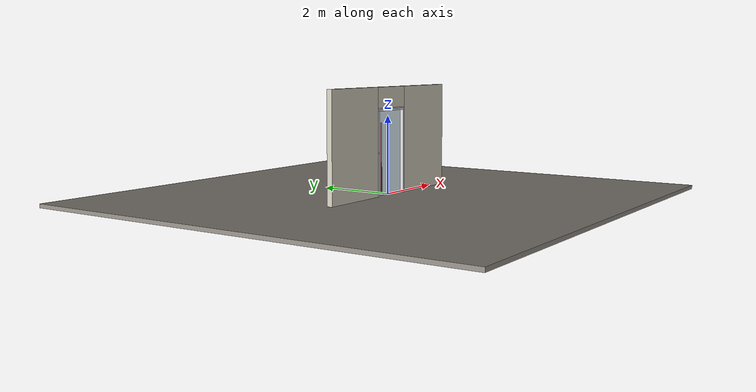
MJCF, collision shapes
<?xml version="1.0" ?>
<mujoco model="db0689_swing_single_minimal">
  <compiler angle="radian" meshdir="../../hardware" texturedir="../../textures" autolimits="true" inertiafromgeom="false"/>
  <option timestep="0.002" integrator="implicitfast" cone="elliptic" impratio="10" noslip_iterations="3">
    <flag multiccd="enable"/>
  </option>
  <size memory="16M"/>
  <default>
    <geom condim="4" solref="0.005 1" solimp="0.95 0.99 0.001"/>
    <joint solreflimit="0.005 1" solimplimit="0.95 0.99 0.001"/>
    <tendon solreflimit="0.005 1"/>
    <equality solref="0.002 1"/>
  </default>
  <visual>
    <headlight ambient="0.4 0.4 0.4" diffuse="0.7 0.7 0.7" specular="0.2 0.2 0.2"/>
    <quality shadowsize="4096"/>
    <map znear="0.01" zfar="60"/>
  </visual>
  <asset>
    <mesh name="pull_897e207f65" file="pull_897e207f65.obj"/>
    <material name="mat_floor" rgba="0.55 0.53 0.5 1" specular="0.2" shininess="0.15" reflectance="0"/>
    <material name="mat_wall" rgba="0.78 0.76 0.7 1" specular="0.2" shininess="0.1" reflectance="0"/>
    <material name="mat_leaf" rgba="0.85 0.92 0.95 0.25" specular="0.2" shininess="0.95" reflectance="0.1"/>
    <material name="mat_glass_leaf" rgba="0.85 0.92 0.95 0.25" specular="0.2" shininess="0.95" reflectance="0.1"/>
    <material name="mat_patch" rgba="0.75 0.76 0.77 1" specular="0.8" shininess="0.65" reflectance="0.4"/>
    <material name="mat_hinge" rgba="0.65 0.66 0.68 1" specular="0.74" shininess="0.5" reflectance="0.36"/>
    <material name="mat_op_stainless" rgba="0.75 0.76 0.77 1" specular="0.8" shininess="0.65" reflectance="0.4"/>
    <material name="mat_deadbolt" rgba="0.85 0.66 0.3 1" specular="0.8" shininess="0.75" reflectance="0.4"/>
    <material name="mat_frame" rgba="0.8 0.81 0.83 1" specular="0.8" shininess="0.6" reflectance="0.4"/>
    <material name="mat_closer" rgba="0.22 0.17 0.13 1" specular="0.8" shininess="0.6" reflectance="0.4"/>
    <material name="mat_stop" rgba="0.9 0.9 0.92 1" specular="0.8" shininess="0.9" reflectance="0.4"/>
    <texture name="skybox" type="skybox" builtin="gradient" rgb1="0.6 0.7 0.85" rgb2="0.9 0.92 0.95" width="256" height="256"/>
  </asset>
  <worldbody>
    <light name="sun" pos="1.5 -2.5 4" dir="-0.3 0.5 -0.8" directional="true" diffuse="0.8 0.8 0.8" specular="0.3 0.3 0.3" castshadow="true"/>
    <light name="fill" pos="-1.5 2.5 3" dir="0.3 -0.5 -0.7" directional="true" diffuse="0.35 0.35 0.4" castshadow="false"/>
    <camera name="robot_view" pos="0 -2.680813 1.812087" xyaxes="1 0 0 0 0.26963 0.962964" fovy="52"/>
    <camera name="far_view" pos="0 2.594812 1.812087" xyaxes="-1 0 0 0 -0.26963 0.962964" fovy="52"/>
    <camera name="iso" pos="-2.004737 -2.258763 2.234138" xyaxes="0.741536 -0.670913 0 0.242917 0.268487 0.932151" fovy="46"/>
    <camera name="detail_handle" pos="-0.2495 -0.8875 1.245" xyaxes="0.97561 0.219512 0 -0.070934 0.315262 0.94635" fovy="38"/>
    <geom name="floor" type="box" size="6 6 0.05" pos="0 0 -0.05" material="mat_floor" group="0" contype="1" conaffinity="1" friction="0.8 0.005 0.0001" density="2400"/>
    <geom name="wall_left" type="box" size="0.94325 0.0725 1.3735" pos="-1.55675 -0.043 1.3735" material="mat_wall" group="0" contype="1" conaffinity="1" friction="0.6 0.005 0.0001" density="800"/>
    <geom name="wall_right" type="box" size="0.95825 0.0725 1.3735" pos="1.54175 -0.043 1.3735" material="mat_wall" group="0" contype="1" conaffinity="1" friction="0.6 0.005 0.0001" density="800"/>
    <geom name="wall_header" type="box" size="0.5985 0.0725 0.2625" pos="-0.015 -0.043 2.4845" material="mat_wall" group="0" contype="1" conaffinity="1" friction="0.6 0.005 0.0001" density="800"/>
    <geom name="jamb_hinge" type="box" size="0.0225 0.0725 1.0735" pos="0.561 -0.043 1.0735" material="mat_frame" group="0" contype="1" conaffinity="1" friction="0.6 0.005 0.0001" density="300"/>
    <geom name="strike_1105_wall_n" type="box" size="0.0375 0.053 0.0155" pos="-0.576 -0.0625 1.105" material="mat_frame" group="0" contype="1" conaffinity="1" friction="0.6 0.005 0.0001" density="300"/>
    <geom name="strike_1105_wall_p" type="box" size="0.0375 0.01 0.0155" pos="-0.576 0.0195 1.105" material="mat_frame" group="0" contype="1" conaffinity="1" friction="0.6 0.005 0.0001" density="300"/>
    <geom name="strike_1105_back" type="box" size="0.0228 0.0095 0.0155" pos="-0.5907 0 1.105" material="mat_frame" group="0" contype="1" conaffinity="1" friction="0.6 0.005 0.0001" density="300"/>
    <geom name="jamb_strike_0" type="box" size="0.0375 0.0725 0.54475" pos="-0.576 -0.043 0.54475" material="mat_frame" group="0" contype="1" conaffinity="1" friction="0.6 0.005 0.0001" density="300"/>
    <geom name="jamb_strike_1" type="box" size="0.0375 0.0725 0.51325" pos="-0.576 -0.043 1.63375" material="mat_frame" group="0" contype="1" conaffinity="1" friction="0.6 0.005 0.0001" density="300"/>
    <geom name="jamb_head" type="box" size="0.5985 0.0725 0.0225" pos="-0.015 -0.043 2.1695" material="mat_frame" group="0" contype="1" conaffinity="1" friction="0.6 0.005 0.0001" density="300"/>
    <geom name="head_stud" type="box" size="0.5985 0.0725 0.015" pos="-0.015 -0.043 2.207" material="mat_wall" group="0" contype="1" conaffinity="1" friction="0.6 0.005 0.0001" density="500"/>
    <site name="approach_point" pos="0 -1.5 0" quat="1 0 0 0" size="0.05" rgba="0.2 0.9 0.2 0.5" group="4"/>
    <site name="goal_point" pos="0 1.5 0" quat="1 0 0 0" size="0.05" rgba="0.2 0.9 0.2 0.5" group="4"/>
    <site name="door_plane_center" pos="0 0 1.0735" quat="1 0 0 0" size="0.02" rgba="0.2 0.9 0.2 0.5" group="4"/>
    <body name="leaf" pos="0.5385 0 0">
      <inertial pos="-0.616735 0 1.055993" mass="127.73481" quat="0.493103 0.493103 0.506803 -0.506803" diaginertia="13.562547306 46.34000664 59.531384773"/>
      <joint name="leaf_hinge" type="hinge" axis="0 0 -1" pos="-0.003 0.0295 0" limited="true" range="0 1.658063" damping="15.49954" frictionloss="1.733837" stiffness="53.756174" springref="-1.828813" armature="0.02"/>
      <geom name="leaf_glass" type="box" size="0.5335 0.0225 1.067" pos="-0.5395 0 1.076" material="mat_glass_leaf" group="0" contype="1" conaffinity="1" friction="0.4 0.005 0.0001" density="1"/>
      <geom name="leaf_pull_n" type="mesh" mesh="pull_897e207f65" pos="-0.968 -0.0225 0.965" quat="0 0 -0.707107 0.707107" material="mat_op_stainless" group="1" contype="0" conaffinity="0" density="3000"/>
      <geom name="leaf_pull_col_n" type="capsule" size="0.016 0.88" pos="-0.968 -0.0875 0.965" material="mat_op_stainless" group="3" contype="1" conaffinity="1" rgba="0.8 0.3 0.3 0.25" friction="0.7 0.01 0.0001" density="3000"/>
      <geom name="leaf_pull_p" type="mesh" mesh="pull_897e207f65" pos="-0.968 0.0225 0.965" quat="0 0 0.707107 0.707107" material="mat_op_stainless" group="1" contype="0" conaffinity="0" density="3000"/>
      <geom name="leaf_pull_col_p" type="capsule" size="0.016 0.88" pos="-0.968 0.0875 0.965" material="mat_op_stainless" group="3" contype="1" conaffinity="1" rgba="0.8 0.3 0.3 0.25" friction="0.7 0.01 0.0001" density="3000"/>
      <site name="leaf_pull_grip_n" pos="-0.968 -0.0875 0.965" quat="1 0 0 0" size="0.012" rgba="0.2 0.9 0.2 0.5" group="4"/>
      <site name="leaf_pull_grip_p" pos="-0.968 0.0875 0.965" quat="1 0 0 0" size="0.012" rgba="0.2 0.9 0.2 0.5" group="4"/>
      <site name="leaf_edge_mid" pos="-1.073 0 1.067" quat="1 0 0 0" size="0.02" rgba="0.2 0.9 0.2 0.5" group="4"/>
    </body>
  </worldbody>
  <sensor>
    <jointpos name="leaf_hinge_pos" joint="leaf_hinge"/>
    <jointvel name="leaf_hinge_vel" joint="leaf_hinge"/>
  </sensor>
</mujoco>
